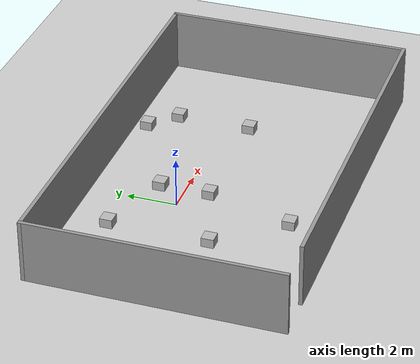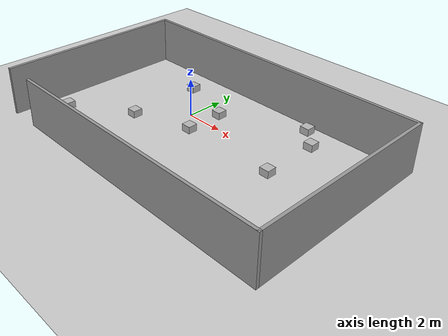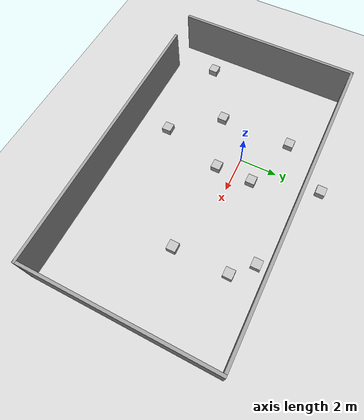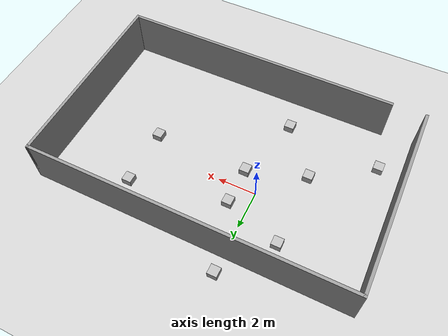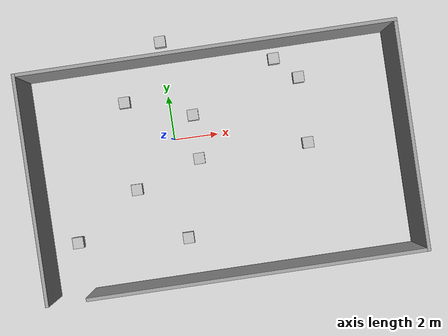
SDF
<sdf version="1.4">
 <world name="myworld">
  <include><uri>model://sun</uri></include>
  <gravity>0 0 -9.8</gravity>
  <include><uri>model://ground_plane</uri></include>
  <model name="tsa_room"><include><static>true</static><uri>model://tsa_room</uri></include></model>
  <model name="box_model">
   <include>
    <name>box1</name>
    <pose>1 1 0.1 0 0 0</pose>
    <static>true</static>
    <uri>model://box_model</uri>
   </include>
   <include>
    <name>box2</name>
    <pose>5 3 0.1 0 0 0</pose>
    <static>true</static>
    <uri>model://box_model</uri>
   </include>
   <include>
    <name>box3</name>
    <pose>-5 -4 0.1 0 0 0</pose>
    <static>true</static>
    <uri>model://box_model</uri>
   </include>
   <include>
    <name>box4</name>
    <pose>6 -1 0.1 0 0 0</pose>
    <static>true</static>
    <uri>model://box_model</uri>
   </include>
   <include>
    <name>box5</name>
    <pose>1 -1 0.1 0 0 0</pose>
    <scale>1.0 1.0 5.0</scale>
    <static>true</static>
    <uri>model://box_model</uri>
   </include>
   <include>
    <name>table_1</name>
    <pose>6 2 0.1 0 0 0</pose>
    <scale>2.0 1.0 1.0</scale>
    <static>true</static>
    <uri>model://box_model</uri>
   </include>
   <include>
    <name>table_2</name>
    <pose>-2 -2 0.1 0 0 1.57</pose>
    <scale>1 3 1</scale>
    <static>true</static>
    <uri>model://box_model</uri>
   </include>
   <include>
    <name>table_3</name>
    <pose>-2 2 0.1 0 0 -1.57</pose>
    <static>true</static>
    <uri>model://box_model</uri>
   </include>
   <include>
    <name>cupboard_1</name>
    <pose>0 -4.5 0.1 0 0 0</pose>
    <scale>2.0 1.0 5.0</scale>
    <static>true</static>
    <uri>model://box_model</uri>
   </include>
   <include>
    <name>cupboard_2</name>
    <pose>0 4.5 0.1 0 0 0</pose>
    <scale>2.0 1.0 5.0</scale>
    <static>true</static>
    <uri>model://box_model</uri>
   </include>
  </model>
 </world>
</sdf>

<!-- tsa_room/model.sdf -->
<sdf version='1.6'>
  <model name='tsa_room'>
    <pose frame=''>1.95411 -1.32955 0 0 -0 0</pose>
    <link name='Wall_0'>
      <collision name='Wall_0_Collision'>
        <geometry>
          <box>
            <size>10 0.15 2.5</size>
          </box>
        </geometry>
        <pose frame=''>0 0 1.25 0 -0 0</pose>
      </collision>
      <visual name='Wall_0_Visual'>
        <pose frame=''>0 0 1.25 0 -0 0</pose>
        <geometry>
          <box>
            <size>10 0.15 2.5</size>
          </box>
        </geometry>
        <material>
          <script>
            <uri>file://media/materials/scripts/gazebo.material</uri>
            <name>Gazebo/Grey</name>
          </script>
          <ambient>1 1 1 1</ambient>
        </material>
        <meta>
          <layer>0</layer>
        </meta>
      </visual>
      <pose frame=''>-8.175 0 0 0 0 -1.5708</pose>
    </link>
    <link name='Wall_3'>
      <collision name='Wall_3_Collision'>
        <geometry>
          <box>
            <size>16.5 0.15 2.5</size>
          </box>
        </geometry>
        <pose frame=''>0 0 1.25 0 -0 0</pose>
      </collision>
      <visual name='Wall_3_Visual'>
        <pose frame=''>0 0 1.25 0 -0 0</pose>
        <geometry>
          <box>
            <size>16.5 0.15 2.5</size>
          </box>
        </geometry>
        <material>
          <script>
            <uri>file://media/materials/scripts/gazebo.material</uri>
            <name>Gazebo/Grey</name>
          </script>
          <ambient>1 1 1 1</ambient>
        </material>
        <meta>
          <layer>0</layer>
        </meta>
      </visual>
      <pose frame=''>0 4.925 0 0 -0 0</pose>
    </link>
    <link name='Wall_4'>
      <collision name='Wall_4_Collision'>
        <geometry>
          <box>
            <size>10 0.15 2.5</size>
          </box>
        </geometry>
        <pose frame=''>0 0 1.25 0 -0 0</pose>
      </collision>
      <visual name='Wall_4_Visual'>
        <pose frame=''>0 0 1.25 0 -0 0</pose>
        <geometry>
          <box>
            <size>10 0.15 2.5</size>
          </box>
        </geometry>
        <material>
          <script>
            <uri>file://media/materials/scripts/gazebo.material</uri>
            <name>Gazebo/Grey</name>
          </script>
          <ambient>1 1 1 1</ambient>
        </material>
        <meta>
          <layer>0</layer>
        </meta>
      </visual>
      <pose frame=''>8.175 0 0 0 0 -1.5708</pose>
    </link>
    <link name='Wall_5'>
      <collision name='Wall_5_Collision'>
        <geometry>
          <box>
            <size>14.75 0.15 2.5</size>
          </box>
        </geometry>
        <pose frame=''>0 0 1.25 0 -0 0</pose>
      </collision>
      <visual name='Wall_5_Visual'>
        <pose frame=''>0 0 1.25 0 -0 0</pose>
        <geometry>
          <box>
            <size>14.75 0.15 2.5</size>
          </box>
        </geometry>
        <material>
          <script>
            <uri>file://media/materials/scripts/gazebo.material</uri>
            <name>Gazebo/Grey</name>
          </script>
          <ambient>1 1 1 1</ambient>
        </material>
        <meta>
          <layer>0</layer>
        </meta>
      </visual>
      <pose frame=''>0.875 -4.925 0 0 -0 3.14159</pose>
    </link>
    <static>1</static>
  </model>
</sdf>

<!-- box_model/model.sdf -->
<sdf version="1.6">
<model name="box_model">
  <pose>0 0 0.1 0 0 0</pose>
  <static>true</static>
    <link name="link">
      <inertial>
        <mass>1.0</mass>
        <inertia>
          <ixx>0.083</ixx>       <!-- for a box: ixx = 0.083 * mass * (y*y + z*z) -->
          <ixy>0.0</ixy>         <!-- for a box: ixy = 0 -->
          <ixz>0.0</ixz>         <!-- for a box: ixz = 0 -->
          <iyy>0.083</iyy>       <!-- for a box: iyy = 0.083 * mass * (x*x + z*z) -->
          <iyz>0.0</iyz>         <!-- for a box: iyz = 0 -->
          <izz>0.083</izz>       <!-- for a box: izz = 0.083 * mass * (x*x + y*y) -->
        </inertia>
      </inertial>
      <collision name="collision">
        <geometry>
          <box>
            <size>0.5 0.5 0.5</size>
          </box>
        </geometry>
      </collision>
      <visual name="visual">
        <geometry>
          <box>
            <size>0.5 0.5 0.5</size>
          </box>
        </geometry>
      </visual>
    </link>
  </model>
</sdf>
